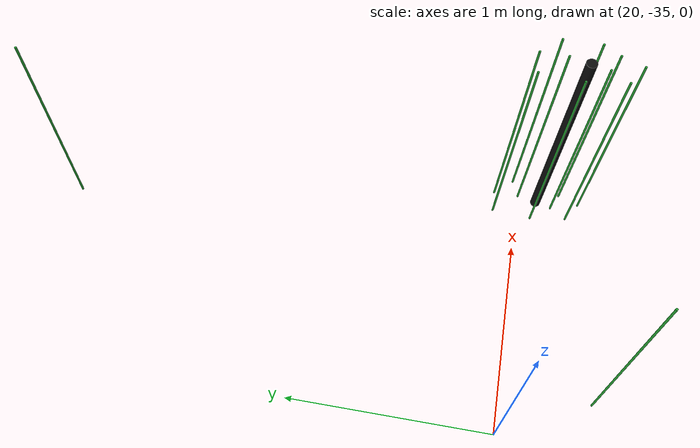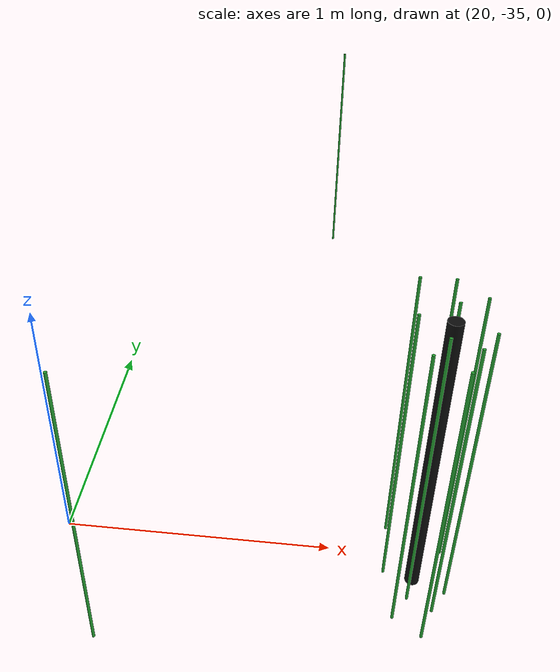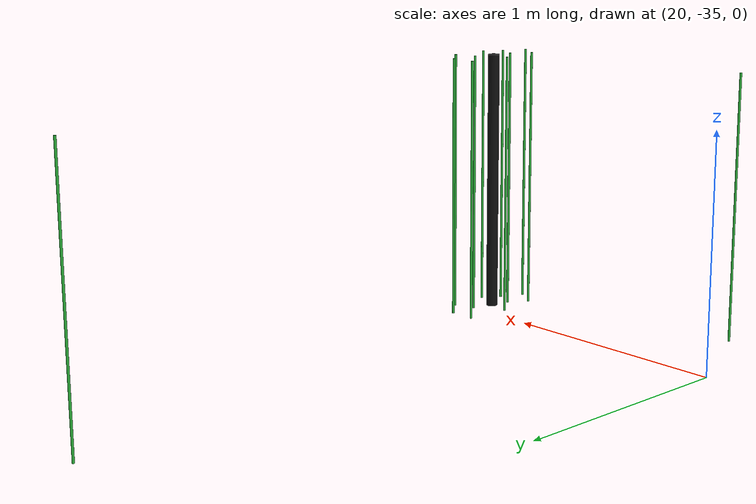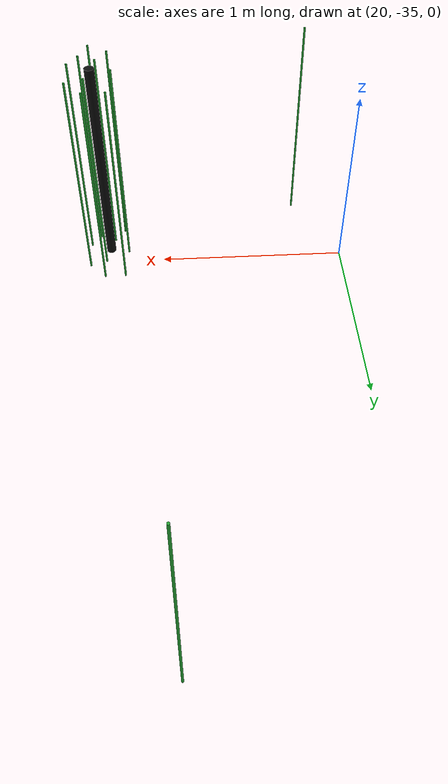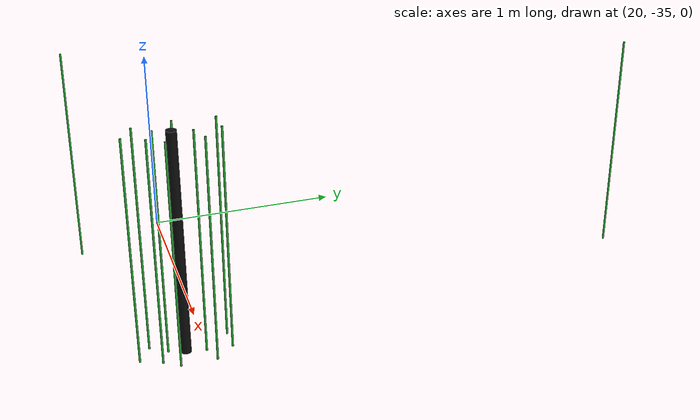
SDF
<sdf version="1.6">
 <world name="default">
  <model name="pole_26">
   <static>1</static>
   <pose>21.3 -35.1 0.575 0 -0 0</pose>
   <link name="link">
    <collision name="collision">
     <geometry><cylinder><length>1.15</length><radius>0.025</radius></cylinder></geometry>
    </collision>
    <visual name="visual">
     <geometry><cylinder><length>1.15</length><radius>0.025</radius></cylinder></geometry>
     <material>
      <script><uri>file://media/materials/scripts/gazebo.material</uri><name>Gazebo/Chrome</name></script>
      <shader type="vertex"><normal_map>__default__</normal_map></shader>
      <emissive>0.1 0.1 0.1 1</emissive>
      <specular>0.01 0.01 0.01 1</specular>
      <ambient>0.5 0.5 0.5 1</ambient>
      <diffuse>0.05 0.05 0.05 1</diffuse>
     </material>
    </visual>
   </link>
  </model>
  <model name="pole_27_clone_clone_74">
   <link name="link">
    <inertial>
     <mass>1</mass>
     <inertia><ixx>1</ixx><ixy>0</ixy><ixz>0</ixz><iyy>1</iyy><iyz>0</iyz><izz>1</izz></inertia>
    </inertial>
    <visual name="visual">
     <geometry><cylinder><length>1.15</length><radius>0.005</radius></cylinder></geometry>
     <material>
      <script><uri>file://media/materials/scripts/gazebo.material</uri><name>Gazebo/Green</name></script>
      <shader type="vertex"><normal_map>__default__</normal_map></shader>
      <emissive>0 0.1 0 1</emissive>
      <specular>0 0.01 0 1</specular>
      <ambient>0 0.5 0 1</ambient>
      <diffuse>0 0.05 0 1</diffuse>
     </material>
    </visual>
    <collision name="collision">
     <geometry><cylinder><radius>0.005</radius><length>1.15</length></cylinder></geometry>
     <surface>
      <friction>
       <ode><mu>1</mu><mu2>1</mu2><fdir1>0 0 0</fdir1><slip1>0</slip1><slip2>0</slip2></ode>
       <torsional>
        <coefficient>1</coefficient>
        <patch_radius>0</patch_radius>
        <surface_radius>0</surface_radius>
        <use_patch_radius>1</use_patch_radius>
        <ode><slip>0</slip></ode>
       </torsional>
      </friction>
      <bounce><restitution_coefficient>0</restitution_coefficient><threshold>1e+06</threshold></bounce>
      <contact>
       <collide_without_contact>0</collide_without_contact>
       <collide_without_contact_bitmask>1</collide_without_contact_bitmask>
       <collide_bitmask>1</collide_bitmask>
       <ode>
        <soft_cfm>0</soft_cfm>
        <soft_erp>0.2</soft_erp>
        <kp>1e+13</kp>
        <kd>1</kd>
        <max_vel>0.01</max_vel>
        <min_depth>0</min_depth>
       </ode>
       <bullet>
        <split_impulse>1</split_impulse>
        <split_impulse_penetration_threshold>-0.01</split_impulse_penetration_threshold>
        <soft_cfm>0</soft_cfm>
        <soft_erp>0.2</soft_erp>
        <kp>1e+13</kp>
        <kd>1</kd>
       </bullet>
      </contact>
     </surface>
    </collision>
   </link>
   <static>1</static>
   <pose>20.948 -32.6941 0.575 0 -0 0</pose>
  </model>
  <model name="pole_27_clone_clone_75">
   <link name="link">
    <inertial>
     <mass>1</mass>
     <inertia><ixx>1</ixx><ixy>0</ixy><ixz>0</ixz><iyy>1</iyy><iyz>0</iyz><izz>1</izz></inertia>
    </inertial>
    <visual name="visual">
     <geometry><cylinder><length>1.15</length><radius>0.005</radius></cylinder></geometry>
     <material>
      <script><uri>file://media/materials/scripts/gazebo.material</uri><name>Gazebo/Green</name></script>
      <shader type="vertex"><normal_map>__default__</normal_map></shader>
      <emissive>0 0.1 0 1</emissive>
      <specular>0 0.01 0 1</specular>
      <ambient>0 0.5 0 1</ambient>
      <diffuse>0 0.05 0 1</diffuse>
     </material>
    </visual>
    <collision name="collision">
     <geometry><cylinder><radius>0.005</radius><length>1.15</length></cylinder></geometry>
     <surface>
      <friction>
       <ode><mu>1</mu><mu2>1</mu2><fdir1>0 0 0</fdir1><slip1>0</slip1><slip2>0</slip2></ode>
       <torsional>
        <coefficient>1</coefficient>
        <patch_radius>0</patch_radius>
        <surface_radius>0</surface_radius>
        <use_patch_radius>1</use_patch_radius>
        <ode><slip>0</slip></ode>
       </torsional>
      </friction>
      <bounce><restitution_coefficient>0</restitution_coefficient><threshold>1e+06</threshold></bounce>
      <contact>
       <collide_without_contact>0</collide_without_contact>
       <collide_without_contact_bitmask>1</collide_without_contact_bitmask>
       <collide_bitmask>1</collide_bitmask>
       <ode>
        <soft_cfm>0</soft_cfm>
        <soft_erp>0.2</soft_erp>
        <kp>1e+13</kp>
        <kd>1</kd>
        <max_vel>0.01</max_vel>
        <min_depth>0</min_depth>
       </ode>
       <bullet>
        <split_impulse>1</split_impulse>
        <split_impulse_penetration_threshold>-0.01</split_impulse_penetration_threshold>
        <soft_cfm>0</soft_cfm>
        <soft_erp>0.2</soft_erp>
        <kp>1e+13</kp>
        <kd>1</kd>
       </bullet>
      </contact>
     </surface>
    </collision>
   </link>
   <static>1</static>
   <pose>21.1986 -35.0795 0.575 0 -0 0</pose>
  </model>
  <model name="pole_27_clone_clone_76">
   <link name="link">
    <inertial>
     <mass>1</mass>
     <inertia><ixx>1</ixx><ixy>0</ixy><ixz>0</ixz><iyy>1</iyy><iyz>0</iyz><izz>1</izz></inertia>
    </inertial>
    <visual name="visual">
     <geometry><cylinder><length>1.15</length><radius>0.005</radius></cylinder></geometry>
     <material>
      <script><uri>file://media/materials/scripts/gazebo.material</uri><name>Gazebo/Green</name></script>
      <shader type="vertex"><normal_map>__default__</normal_map></shader>
      <emissive>0 0.1 0 1</emissive>
      <specular>0 0.01 0 1</specular>
      <ambient>0 0.5 0 1</ambient>
      <diffuse>0 0.05 0 1</diffuse>
     </material>
    </visual>
    <collision name="collision">
     <geometry><cylinder><radius>0.005</radius><length>1.15</length></cylinder></geometry>
     <surface>
      <friction>
       <ode><mu>1</mu><mu2>1</mu2><fdir1>0 0 0</fdir1><slip1>0</slip1><slip2>0</slip2></ode>
       <torsional>
        <coefficient>1</coefficient>
        <patch_radius>0</patch_radius>
        <surface_radius>0</surface_radius>
        <use_patch_radius>1</use_patch_radius>
        <ode><slip>0</slip></ode>
       </torsional>
      </friction>
      <bounce><restitution_coefficient>0</restitution_coefficient><threshold>1e+06</threshold></bounce>
      <contact>
       <collide_without_contact>0</collide_without_contact>
       <collide_without_contact_bitmask>1</collide_without_contact_bitmask>
       <collide_bitmask>1</collide_bitmask>
       <ode>
        <soft_cfm>0</soft_cfm>
        <soft_erp>0.2</soft_erp>
        <kp>1e+13</kp>
        <kd>1</kd>
        <max_vel>0.01</max_vel>
        <min_depth>0</min_depth>
       </ode>
       <bullet>
        <split_impulse>1</split_impulse>
        <split_impulse_penetration_threshold>-0.01</split_impulse_penetration_threshold>
        <soft_cfm>0</soft_cfm>
        <soft_erp>0.2</soft_erp>
        <kp>1e+13</kp>
        <kd>1</kd>
       </bullet>
      </contact>
     </surface>
    </collision>
   </link>
   <static>1</static>
   <pose>21.3224 -35.0056 0.575 0 -0 0</pose>
  </model>
  <model name="pole_27_clone_clone_77">
   <link name="link">
    <inertial>
     <mass>1</mass>
     <inertia><ixx>1</ixx><ixy>0</ixy><ixz>0</ixz><iyy>1</iyy><iyz>0</iyz><izz>1</izz></inertia>
    </inertial>
    <visual name="visual">
     <geometry><cylinder><length>1.15</length><radius>0.005</radius></cylinder></geometry>
     <material>
      <script><uri>file://media/materials/scripts/gazebo.material</uri><name>Gazebo/Green</name></script>
      <shader type="vertex"><normal_map>__default__</normal_map></shader>
      <emissive>0 0.1 0 1</emissive>
      <specular>0 0.01 0 1</specular>
      <ambient>0 0.5 0 1</ambient>
      <diffuse>0 0.05 0 1</diffuse>
     </material>
    </visual>
    <collision name="collision">
     <geometry><cylinder><radius>0.005</radius><length>1.15</length></cylinder></geometry>
     <surface>
      <friction>
       <ode><mu>1</mu><mu2>1</mu2><fdir1>0 0 0</fdir1><slip1>0</slip1><slip2>0</slip2></ode>
       <torsional>
        <coefficient>1</coefficient>
        <patch_radius>0</patch_radius>
        <surface_radius>0</surface_radius>
        <use_patch_radius>1</use_patch_radius>
        <ode><slip>0</slip></ode>
       </torsional>
      </friction>
      <bounce><restitution_coefficient>0</restitution_coefficient><threshold>1e+06</threshold></bounce>
      <contact>
       <collide_without_contact>0</collide_without_contact>
       <collide_without_contact_bitmask>1</collide_without_contact_bitmask>
       <collide_bitmask>1</collide_bitmask>
       <ode>
        <soft_cfm>0</soft_cfm>
        <soft_erp>0.2</soft_erp>
        <kp>1e+13</kp>
        <kd>1</kd>
        <max_vel>0.01</max_vel>
        <min_depth>0</min_depth>
       </ode>
       <bullet>
        <split_impulse>1</split_impulse>
        <split_impulse_penetration_threshold>-0.01</split_impulse_penetration_threshold>
        <soft_cfm>0</soft_cfm>
        <soft_erp>0.2</soft_erp>
        <kp>1e+13</kp>
        <kd>1</kd>
       </bullet>
      </contact>
     </surface>
    </collision>
   </link>
   <static>1</static>
   <pose>21.411 -35.1464 0.575 0 -0 0</pose>
  </model>
  <model name="pole_27_clone_clone_78">
   <link name="link">
    <inertial>
     <mass>1</mass>
     <inertia><ixx>1</ixx><ixy>0</ixy><ixz>0</ixz><iyy>1</iyy><iyz>0</iyz><izz>1</izz></inertia>
    </inertial>
    <visual name="visual">
     <geometry><cylinder><length>1.15</length><radius>0.005</radius></cylinder></geometry>
     <material>
      <script><uri>file://media/materials/scripts/gazebo.material</uri><name>Gazebo/Green</name></script>
      <shader type="vertex"><normal_map>__default__</normal_map></shader>
      <emissive>0 0.1 0 1</emissive>
      <specular>0 0.01 0 1</specular>
      <ambient>0 0.5 0 1</ambient>
      <diffuse>0 0.05 0 1</diffuse>
     </material>
    </visual>
    <collision name="collision">
     <geometry><cylinder><radius>0.005</radius><length>1.15</length></cylinder></geometry>
     <surface>
      <friction>
       <ode><mu>1</mu><mu2>1</mu2><fdir1>0 0 0</fdir1><slip1>0</slip1><slip2>0</slip2></ode>
       <torsional>
        <coefficient>1</coefficient>
        <patch_radius>0</patch_radius>
        <surface_radius>0</surface_radius>
        <use_patch_radius>1</use_patch_radius>
        <ode><slip>0</slip></ode>
       </torsional>
      </friction>
      <bounce><restitution_coefficient>0</restitution_coefficient><threshold>1e+06</threshold></bounce>
      <contact>
       <collide_without_contact>0</collide_without_contact>
       <collide_without_contact_bitmask>1</collide_without_contact_bitmask>
       <collide_bitmask>1</collide_bitmask>
       <ode>
        <soft_cfm>0</soft_cfm>
        <soft_erp>0.2</soft_erp>
        <kp>1e+13</kp>
        <kd>1</kd>
        <max_vel>0.01</max_vel>
        <min_depth>0</min_depth>
       </ode>
       <bullet>
        <split_impulse>1</split_impulse>
        <split_impulse_penetration_threshold>-0.01</split_impulse_penetration_threshold>
        <soft_cfm>0</soft_cfm>
        <soft_erp>0.2</soft_erp>
        <kp>1e+13</kp>
        <kd>1</kd>
       </bullet>
      </contact>
     </surface>
    </collision>
   </link>
   <static>1</static>
   <pose>21.2785 -35.1816 0.575 0 -0 0</pose>
  </model>
  <model name="pole_27_clone_clone_79">
   <link name="link">
    <inertial>
     <mass>1</mass>
     <inertia><ixx>1</ixx><ixy>0</ixy><ixz>0</ixz><iyy>1</iyy><iyz>0</iyz><izz>1</izz></inertia>
    </inertial>
    <visual name="visual">
     <geometry><cylinder><length>1.15</length><radius>0.005</radius></cylinder></geometry>
     <material>
      <script><uri>file://media/materials/scripts/gazebo.material</uri><name>Gazebo/Green</name></script>
      <shader type="vertex"><normal_map>__default__</normal_map></shader>
      <emissive>0 0.1 0 1</emissive>
      <specular>0 0.01 0 1</specular>
      <ambient>0 0.5 0 1</ambient>
      <diffuse>0 0.05 0 1</diffuse>
     </material>
    </visual>
    <collision name="collision">
     <geometry><cylinder><radius>0.005</radius><length>1.15</length></cylinder></geometry>
     <surface>
      <friction>
       <ode><mu>1</mu><mu2>1</mu2><fdir1>0 0 0</fdir1><slip1>0</slip1><slip2>0</slip2></ode>
       <torsional>
        <coefficient>1</coefficient>
        <patch_radius>0</patch_radius>
        <surface_radius>0</surface_radius>
        <use_patch_radius>1</use_patch_radius>
        <ode><slip>0</slip></ode>
       </torsional>
      </friction>
      <bounce><restitution_coefficient>0</restitution_coefficient><threshold>1e+06</threshold></bounce>
      <contact>
       <collide_without_contact>0</collide_without_contact>
       <collide_without_contact_bitmask>1</collide_without_contact_bitmask>
       <collide_bitmask>1</collide_bitmask>
       <ode>
        <soft_cfm>0</soft_cfm>
        <soft_erp>0.2</soft_erp>
        <kp>1e+13</kp>
        <kd>1</kd>
        <max_vel>0.01</max_vel>
        <min_depth>0</min_depth>
       </ode>
       <bullet>
        <split_impulse>1</split_impulse>
        <split_impulse_penetration_threshold>-0.01</split_impulse_penetration_threshold>
        <soft_cfm>0</soft_cfm>
        <soft_erp>0.2</soft_erp>
        <kp>1e+13</kp>
        <kd>1</kd>
       </bullet>
      </contact>
     </surface>
    </collision>
   </link>
   <static>1</static>
   <pose>21.2251 -35.2626 0.575 0 -0 0</pose>
  </model>
  <model name="pole_27_clone_clone_80">
   <link name="link">
    <inertial>
     <mass>1</mass>
     <inertia><ixx>1</ixx><ixy>0</ixy><ixz>0</ixz><iyy>1</iyy><iyz>0</iyz><izz>1</izz></inertia>
    </inertial>
    <visual name="visual">
     <geometry><cylinder><length>1.15</length><radius>0.005</radius></cylinder></geometry>
     <material>
      <script><uri>file://media/materials/scripts/gazebo.material</uri><name>Gazebo/Green</name></script>
      <shader type="vertex"><normal_map>__default__</normal_map></shader>
      <emissive>0 0.1 0 1</emissive>
      <specular>0 0.01 0 1</specular>
      <ambient>0 0.5 0 1</ambient>
      <diffuse>0 0.05 0 1</diffuse>
     </material>
    </visual>
    <collision name="collision">
     <geometry><cylinder><radius>0.005</radius><length>1.15</length></cylinder></geometry>
     <surface>
      <friction>
       <ode><mu>1</mu><mu2>1</mu2><fdir1>0 0 0</fdir1><slip1>0</slip1><slip2>0</slip2></ode>
       <torsional>
        <coefficient>1</coefficient>
        <patch_radius>0</patch_radius>
        <surface_radius>0</surface_radius>
        <use_patch_radius>1</use_patch_radius>
        <ode><slip>0</slip></ode>
       </torsional>
      </friction>
      <bounce><restitution_coefficient>0</restitution_coefficient><threshold>1e+06</threshold></bounce>
      <contact>
       <collide_without_contact>0</collide_without_contact>
       <collide_without_contact_bitmask>1</collide_without_contact_bitmask>
       <collide_bitmask>1</collide_bitmask>
       <ode>
        <soft_cfm>0</soft_cfm>
        <soft_erp>0.2</soft_erp>
        <kp>1e+13</kp>
        <kd>1</kd>
        <max_vel>0.01</max_vel>
        <min_depth>0</min_depth>
       </ode>
       <bullet>
        <split_impulse>1</split_impulse>
        <split_impulse_penetration_threshold>-0.01</split_impulse_penetration_threshold>
        <soft_cfm>0</soft_cfm>
        <soft_erp>0.2</soft_erp>
        <kp>1e+13</kp>
        <kd>1</kd>
       </bullet>
      </contact>
     </surface>
    </collision>
   </link>
   <static>1</static>
   <pose>21.362 -35.2213 0.575 0 -0 0</pose>
  </model>
  <model name="pole_27_clone_clone_81">
   <link name="link">
    <inertial>
     <mass>1</mass>
     <inertia><ixx>1</ixx><ixy>0</ixy><ixz>0</ixz><iyy>1</iyy><iyz>0</iyz><izz>1</izz></inertia>
    </inertial>
    <visual name="visual">
     <geometry><cylinder><length>1.15</length><radius>0.005</radius></cylinder></geometry>
     <material>
      <script><uri>file://media/materials/scripts/gazebo.material</uri><name>Gazebo/Green</name></script>
      <shader type="vertex"><normal_map>__default__</normal_map></shader>
      <emissive>0 0.1 0 1</emissive>
      <specular>0 0.01 0 1</specular>
      <ambient>0 0.5 0 1</ambient>
      <diffuse>0 0.05 0 1</diffuse>
     </material>
    </visual>
    <collision name="collision">
     <geometry><cylinder><radius>0.005</radius><length>1.15</length></cylinder></geometry>
     <surface>
      <friction>
       <ode><mu>1</mu><mu2>1</mu2><fdir1>0 0 0</fdir1><slip1>0</slip1><slip2>0</slip2></ode>
       <torsional>
        <coefficient>1</coefficient>
        <patch_radius>0</patch_radius>
        <surface_radius>0</surface_radius>
        <use_patch_radius>1</use_patch_radius>
        <ode><slip>0</slip></ode>
       </torsional>
      </friction>
      <bounce><restitution_coefficient>0</restitution_coefficient><threshold>1e+06</threshold></bounce>
      <contact>
       <collide_without_contact>0</collide_without_contact>
       <collide_without_contact_bitmask>1</collide_without_contact_bitmask>
       <collide_bitmask>1</collide_bitmask>
       <ode>
        <soft_cfm>0</soft_cfm>
        <soft_erp>0.2</soft_erp>
        <kp>1e+13</kp>
        <kd>1</kd>
        <max_vel>0.01</max_vel>
        <min_depth>0</min_depth>
       </ode>
       <bullet>
        <split_impulse>1</split_impulse>
        <split_impulse_penetration_threshold>-0.01</split_impulse_penetration_threshold>
        <soft_cfm>0</soft_cfm>
        <soft_erp>0.2</soft_erp>
        <kp>1e+13</kp>
        <kd>1</kd>
       </bullet>
      </contact>
     </surface>
    </collision>
   </link>
   <static>1</static>
   <pose>21.2136 -34.8817 0.575 0 -0 0</pose>
  </model>
  <model name="pole_27_clone_clone_82">
   <link name="link">
    <inertial>
     <mass>1</mass>
     <inertia><ixx>1</ixx><ixy>0</ixy><ixz>0</ixz><iyy>1</iyy><iyz>0</iyz><izz>1</izz></inertia>
    </inertial>
    <visual name="visual">
     <geometry><cylinder><length>1.15</length><radius>0.005</radius></cylinder></geometry>
     <material>
      <script><uri>file://media/materials/scripts/gazebo.material</uri><name>Gazebo/Green</name></script>
      <shader type="vertex"><normal_map>__default__</normal_map></shader>
      <emissive>0 0.1 0 1</emissive>
      <specular>0 0.01 0 1</specular>
      <ambient>0 0.5 0 1</ambient>
      <diffuse>0 0.05 0 1</diffuse>
     </material>
    </visual>
    <collision name="collision">
     <geometry><cylinder><radius>0.005</radius><length>1.15</length></cylinder></geometry>
     <surface>
      <friction>
       <ode><mu>1</mu><mu2>1</mu2><fdir1>0 0 0</fdir1><slip1>0</slip1><slip2>0</slip2></ode>
       <torsional>
        <coefficient>1</coefficient>
        <patch_radius>0</patch_radius>
        <surface_radius>0</surface_radius>
        <use_patch_radius>1</use_patch_radius>
        <ode><slip>0</slip></ode>
       </torsional>
      </friction>
      <bounce><restitution_coefficient>0</restitution_coefficient><threshold>1e+06</threshold></bounce>
      <contact>
       <collide_without_contact>0</collide_without_contact>
       <collide_without_contact_bitmask>1</collide_without_contact_bitmask>
       <collide_bitmask>1</collide_bitmask>
       <ode>
        <soft_cfm>0</soft_cfm>
        <soft_erp>0.2</soft_erp>
        <kp>1e+13</kp>
        <kd>1</kd>
        <max_vel>0.01</max_vel>
        <min_depth>0</min_depth>
       </ode>
       <bullet>
        <split_impulse>1</split_impulse>
        <split_impulse_penetration_threshold>-0.01</split_impulse_penetration_threshold>
        <soft_cfm>0</soft_cfm>
        <soft_erp>0.2</soft_erp>
        <kp>1e+13</kp>
        <kd>1</kd>
       </bullet>
      </contact>
     </surface>
    </collision>
   </link>
   <static>1</static>
   <pose>21.4095 -34.9723 0.575 0 -0 0</pose>
  </model>
  <model name="pole_27_clone_clone_83">
   <link name="link">
    <inertial>
     <mass>1</mass>
     <inertia><ixx>1</ixx><ixy>0</ixy><ixz>0</ixz><iyy>1</iyy><iyz>0</iyz><izz>1</izz></inertia>
    </inertial>
    <visual name="visual">
     <geometry><cylinder><length>1.15</length><radius>0.005</radius></cylinder></geometry>
     <material>
      <script><uri>file://media/materials/scripts/gazebo.material</uri><name>Gazebo/Green</name></script>
      <shader type="vertex"><normal_map>__default__</normal_map></shader>
      <emissive>0 0.1 0 1</emissive>
      <specular>0 0.01 0 1</specular>
      <ambient>0 0.5 0 1</ambient>
      <diffuse>0 0.05 0 1</diffuse>
     </material>
    </visual>
    <collision name="collision">
     <geometry><cylinder><radius>0.005</radius><length>1.15</length></cylinder></geometry>
     <surface>
      <friction>
       <ode><mu>1</mu><mu2>1</mu2><fdir1>0 0 0</fdir1><slip1>0</slip1><slip2>0</slip2></ode>
       <torsional>
        <coefficient>1</coefficient>
        <patch_radius>0</patch_radius>
        <surface_radius>0</surface_radius>
        <use_patch_radius>1</use_patch_radius>
        <ode><slip>0</slip></ode>
       </torsional>
      </friction>
      <bounce><restitution_coefficient>0</restitution_coefficient><threshold>1e+06</threshold></bounce>
      <contact>
       <collide_without_contact>0</collide_without_contact>
       <collide_without_contact_bitmask>1</collide_without_contact_bitmask>
       <collide_bitmask>1</collide_bitmask>
       <ode>
        <soft_cfm>0</soft_cfm>
        <soft_erp>0.2</soft_erp>
        <kp>1e+13</kp>
        <kd>1</kd>
        <max_vel>0.01</max_vel>
        <min_depth>0</min_depth>
       </ode>
       <bullet>
        <split_impulse>1</split_impulse>
        <split_impulse_penetration_threshold>-0.01</split_impulse_penetration_threshold>
        <soft_cfm>0</soft_cfm>
        <soft_erp>0.2</soft_erp>
        <kp>1e+13</kp>
        <kd>1</kd>
       </bullet>
      </contact>
     </surface>
    </collision>
   </link>
   <static>1</static>
   <pose>21.3202 -35.3236 0.575 0 -0 0</pose>
  </model>
  <model name="pole_27_clone_clone_84">
   <link name="link">
    <inertial>
     <mass>1</mass>
     <inertia><ixx>1</ixx><ixy>0</ixy><ixz>0</ixz><iyy>1</iyy><iyz>0</iyz><izz>1</izz></inertia>
    </inertial>
    <visual name="visual">
     <geometry><cylinder><length>1.15</length><radius>0.005</radius></cylinder></geometry>
     <material>
      <script><uri>file://media/materials/scripts/gazebo.material</uri><name>Gazebo/Green</name></script>
      <shader type="vertex"><normal_map>__default__</normal_map></shader>
      <emissive>0 0.1 0 1</emissive>
      <specular>0 0.01 0 1</specular>
      <ambient>0 0.5 0 1</ambient>
      <diffuse>0 0.05 0 1</diffuse>
     </material>
    </visual>
    <collision name="collision">
     <geometry><cylinder><radius>0.005</radius><length>1.15</length></cylinder></geometry>
     <surface>
      <friction>
       <ode><mu>1</mu><mu2>1</mu2><fdir1>0 0 0</fdir1><slip1>0</slip1><slip2>0</slip2></ode>
       <torsional>
        <coefficient>1</coefficient>
        <patch_radius>0</patch_radius>
        <surface_radius>0</surface_radius>
        <use_patch_radius>1</use_patch_radius>
        <ode><slip>0</slip></ode>
       </torsional>
      </friction>
      <bounce><restitution_coefficient>0</restitution_coefficient><threshold>1e+06</threshold></bounce>
      <contact>
       <collide_without_contact>0</collide_without_contact>
       <collide_without_contact_bitmask>1</collide_without_contact_bitmask>
       <collide_bitmask>1</collide_bitmask>
       <ode>
        <soft_cfm>0</soft_cfm>
        <soft_erp>0.2</soft_erp>
        <kp>1e+13</kp>
        <kd>1</kd>
        <max_vel>0.01</max_vel>
        <min_depth>0</min_depth>
       </ode>
       <bullet>
        <split_impulse>1</split_impulse>
        <split_impulse_penetration_threshold>-0.01</split_impulse_penetration_threshold>
        <soft_cfm>0</soft_cfm>
        <soft_erp>0.2</soft_erp>
        <kp>1e+13</kp>
        <kd>1</kd>
       </bullet>
      </contact>
     </surface>
    </collision>
   </link>
   <static>1</static>
   <pose>21.3252 -34.8801 0.575 0 -0 0</pose>
  </model>
  <model name="pole_27_clone_clone_254">
   <link name="link">
    <inertial>
     <mass>1</mass>
     <inertia><ixx>1</ixx><ixy>0</ixy><ixz>0</ixz><iyy>1</iyy><iyz>0</iyz><izz>1</izz></inertia>
    </inertial>
    <visual name="visual">
     <geometry><cylinder><length>1.15</length><radius>0.005</radius></cylinder></geometry>
     <material>
      <script><uri>file://media/materials/scripts/gazebo.material</uri><name>Gazebo/Green</name></script>
      <shader type="vertex"><normal_map>__default__</normal_map></shader>
      <emissive>0 0.1 0 1</emissive>
      <specular>0 0.01 0 1</specular>
      <ambient>0 0.5 0 1</ambient>
      <diffuse>0 0.05 0 1</diffuse>
     </material>
    </visual>
    <collision name="collision">
     <geometry><cylinder><radius>0.005</radius><length>1.15</length></cylinder></geometry>
     <surface>
      <friction>
       <ode><mu>1</mu><mu2>1</mu2><fdir1>0 0 0</fdir1><slip1>0</slip1><slip2>0</slip2></ode>
       <torsional>
        <coefficient>1</coefficient>
        <patch_radius>0</patch_radius>
        <surface_radius>0</surface_radius>
        <use_patch_radius>1</use_patch_radius>
        <ode><slip>0</slip></ode>
       </torsional>
      </friction>
      <bounce><restitution_coefficient>0</restitution_coefficient><threshold>1e+06</threshold></bounce>
      <contact>
       <collide_without_contact>0</collide_without_contact>
       <collide_without_contact_bitmask>1</collide_without_contact_bitmask>
       <collide_bitmask>1</collide_bitmask>
       <ode>
        <soft_cfm>0</soft_cfm>
        <soft_erp>0.2</soft_erp>
        <kp>1e+13</kp>
        <kd>1</kd>
        <max_vel>0.01</max_vel>
        <min_depth>0</min_depth>
       </ode>
       <bullet>
        <split_impulse>1</split_impulse>
        <split_impulse_penetration_threshold>-0.01</split_impulse_penetration_threshold>
        <soft_cfm>0</soft_cfm>
        <soft_erp>0.2</soft_erp>
        <kp>1e+13</kp>
        <kd>1</kd>
       </bullet>
      </contact>
     </surface>
    </collision>
   </link>
   <static>1</static>
   <pose>20.2252 -35.4475 0.575 0 -0 0</pose>
  </model>
 </world>
</sdf>
